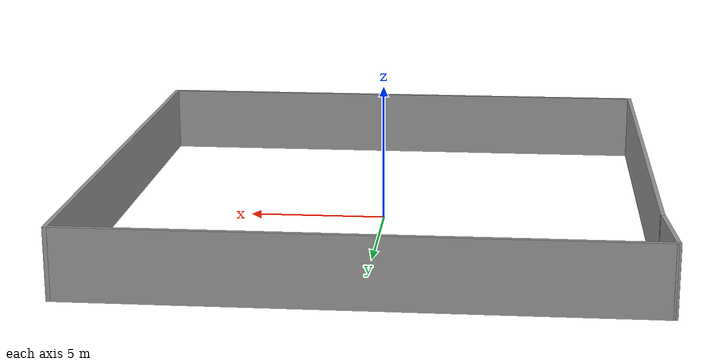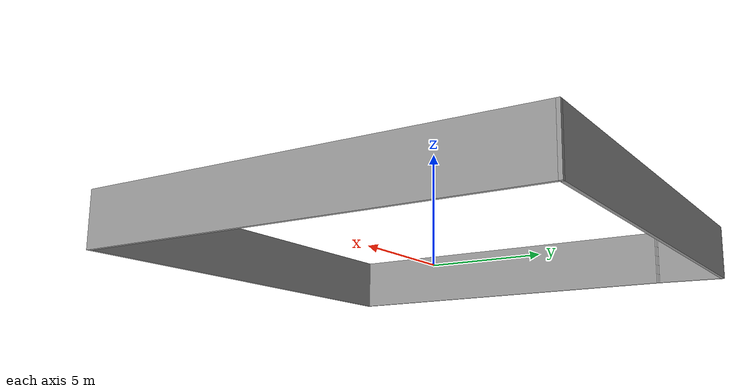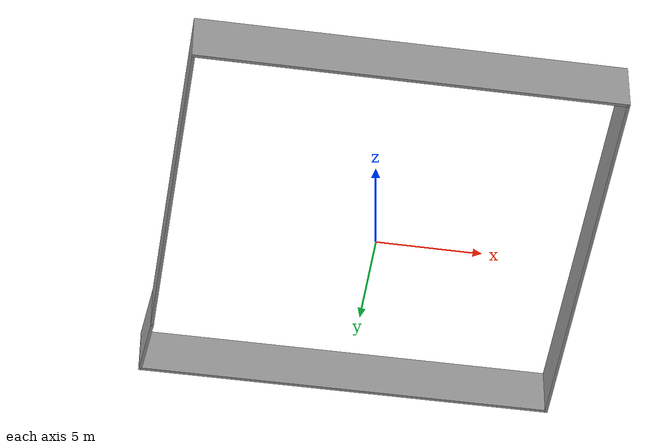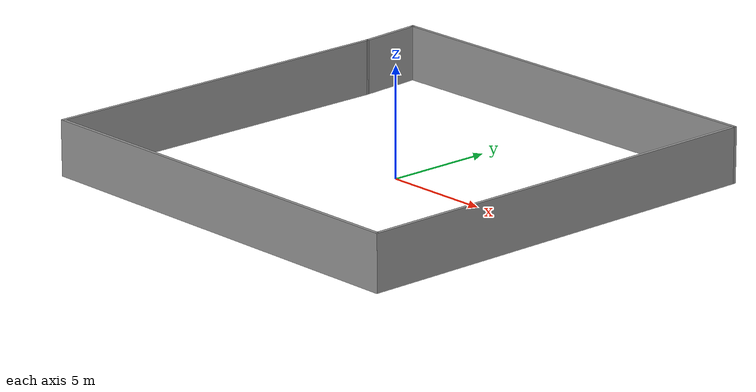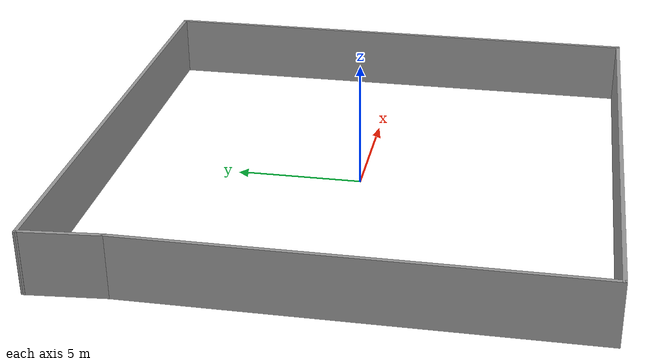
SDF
<?xml version='1.0'?>
<sdf version='1.7'>
  <model name='empty_world'>
    <pose>-0.002346 0.011833 0 0 -0 0</pose>
    <link name='Wall_10'>
      <collision name='Wall_10_Collision'>
        <geometry>
          <box>
            <size>19.75 0.15 2.5</size>
          </box>
        </geometry>
        <pose>0 0 1.25 0 -0 0</pose>
      </collision>
      <visual name='Wall_10_Visual'>
        <pose>0 0 1.25 0 -0 0</pose>
        <geometry>
          <box>
            <size>19.75 0.15 2.5</size>
          </box>
        </geometry>
        <material>
          <script>
            <uri>file://media/materials/scripts/gazebo.material</uri>
            <name>Gazebo/Grey</name>
          </script>
          <ambient>1 1 1 1</ambient>
        </material>
        <meta>
          <layer>0</layer>
        </meta>
      </visual>
      <pose>0.127984 -10.053 0 0 -0 0</pose>
    </link>
    <link name='Wall_11'>
      <collision name='Wall_11_Collision'>
        <geometry>
          <box>
            <size>20.25 0.15 2.5</size>
          </box>
        </geometry>
        <pose>0 0 1.25 0 -0 0</pose>
      </collision>
      <visual name='Wall_11_Visual'>
        <pose>0 0 1.25 0 -0 0</pose>
        <geometry>
          <box>
            <size>20.25 0.15 2.5</size>
          </box>
        </geometry>
        <material>
          <script>
            <uri>file://media/materials/scripts/gazebo.material</uri>
            <name>Gazebo/Grey</name>
          </script>
          <ambient>1 1 1 1</ambient>
        </material>
        <meta>
          <layer>0</layer>
        </meta>
      </visual>
      <pose>9.92798 -0.002984 0 0 -0 1.5708</pose>
    </link>
    <link name='Wall_12'>
      <collision name='Wall_12_Collision'>
        <geometry>
          <box>
            <size>20 0.15 2.5</size>
          </box>
        </geometry>
        <pose>0 0 1.25 0 -0 0</pose>
      </collision>
      <visual name='Wall_12_Visual'>
        <pose>0 0 1.25 0 -0 0</pose>
        <geometry>
          <box>
            <size>20 0.15 2.5</size>
          </box>
        </geometry>
        <material>
          <script>
            <uri>file://media/materials/scripts/gazebo.material</uri>
            <name>Gazebo/Grey</name>
          </script>
          <ambient>1 1 1 1</ambient>
        </material>
        <meta>
          <layer>0</layer>
        </meta>
      </visual>
      <pose>0.002984 10.047 0 0 -0 3.14159</pose>
    </link>
    <link name='Wall_13'>
      <collision name='Wall_13_Collision'>
        <geometry>
          <box>
            <size>3.1604 0.15 2.5</size>
          </box>
        </geometry>
        <pose>0 0 1.25 0 -0 0</pose>
      </collision>
      <visual name='Wall_13_Visual'>
        <pose>0 0 1.25 0 -0 0</pose>
        <geometry>
          <box>
            <size>3.1604 0.15 2.5</size>
          </box>
        </geometry>
        <material>
          <script>
            <uri>file://media/materials/scripts/gazebo.material</uri>
            <name>Gazebo/Grey</name>
          </script>
          <ambient>1 1 1 1</ambient>
        </material>
        <meta>
          <layer>0</layer>
        </meta>
      </visual>
      <pose>-9.79702 8.54702 0 0 -0 -1.48765</pose>
    </link>
    <link name='Wall_9'>
      <collision name='Wall_9_Collision'>
        <geometry>
          <box>
            <size>17.25 0.15 2.5</size>
          </box>
        </geometry>
        <pose>0 0 1.25 0 -0 0</pose>
      </collision>
      <visual name='Wall_9_Visual'>
        <pose>0 0 1.25 0 -0 0</pose>
        <geometry>
          <box>
            <size>17.25 0.15 2.5</size>
          </box>
        </geometry>
        <material>
          <script>
            <uri>file://media/materials/scripts/gazebo.material</uri>
            <name>Gazebo/Grey</name>
          </script>
          <ambient>1 1 1 1</ambient>
        </material>
        <meta>
          <layer>0</layer>
        </meta>
      </visual>
      <pose>-9.67202 -1.50298 0 0 -0 -1.5708</pose>
    </link>
    <static>1</static>
  </model>
</sdf>
